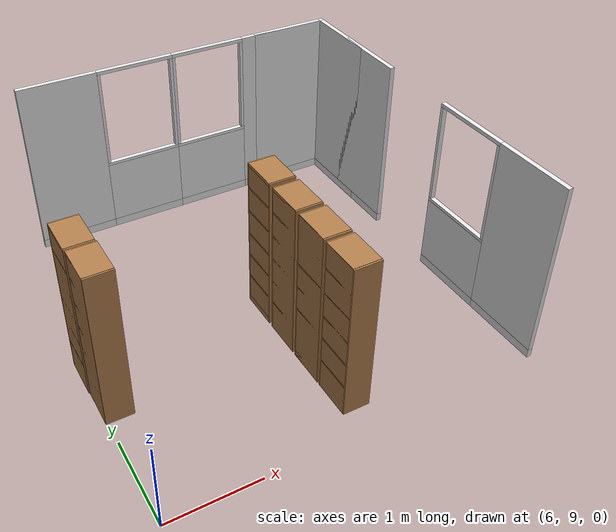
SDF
<sdf version="1.6">
 <world name="robocup_apartment">
  <model name="wall_x13y11">
   <link name="link">
    <inertial>
     <mass>50</mass>
     <inertia><ixx>1</ixx><ixy>0</ixy><ixz>0</ixz><iyy>1</iyy><iyz>0</iyz><izz>1</izz></inertia>
    </inertial>
    <visual name="bottom_frame">
     <pose>0 0 0.05 0 -0 0</pose>
     <geometry><box><size>0.055 0.9 0.1</size></box></geometry>
     <material>
      <script><uri>model://base_materials/color/scripts</uri><name>hsr_color/white</name></script>
     </material>
    </visual>
    <visual name="wall">
     <pose>0 0 1.095 0 -0 0</pose>
     <geometry><box><size>0.055 0.9 1.99</size></box></geometry>
     <material>
      <script>
       <uri>model://base_materials/wall/scripts</uri>
       <uri>model://base_materials/wall/textures</uri>
       <name>wall/white_noise</name>
      </script>
     </material>
    </visual>
    <velocity_decay><linear>0</linear><angular>0</angular></velocity_decay>
   </link>
   <static>1</static>
   <pose>10.1025 9.45 0 0 -0 0</pose>
  </model>
  <model name="wall_x13y12">
   <link name="link">
    <inertial>
     <mass>50</mass>
     <inertia><ixx>1</ixx><ixy>0</ixy><ixz>0</ixz><iyy>1</iyy><iyz>0</iyz><izz>1</izz></inertia>
    </inertial>
    <visual name="bottom_frame">
     <pose>0 0 0.05 0 -0 0</pose>
     <geometry><box><size>0.055 0.9 0.1</size></box></geometry>
     <material>
      <script><uri>model://base_materials/color/scripts</uri><name>hsr_color/white</name></script>
     </material>
    </visual>
    <visual name="wall">
     <pose>0 0 0.4875 0 -0 0</pose>
     <geometry><box><size>0.055 0.9 0.775</size></box></geometry>
     <material>
      <script>
       <uri>model://base_materials/wall/scripts</uri>
       <uri>model://base_materials/wall/textures</uri>
       <name>wall/white_noise</name>
      </script>
     </material>
    </visual>
    <visual name="center_frame">
     <pose>0 0 0.8925 0 -0 0</pose>
     <geometry><box><size>0.055 0.9 0.035</size></box></geometry>
     <material>
      <script><uri>model://base_materials/color/scripts</uri><name>hsr_color/white</name></script>
     </material>
    </visual>
    <visual name="right_frame">
     <pose>0 0.4325 1.48 0 -0 0</pose>
     <geometry><box><size>0.055 0.035 1.14</size></box></geometry>
     <material>
      <script><uri>model://base_materials/color/scripts</uri><name>hsr_color/white</name></script>
     </material>
    </visual>
    <visual name="left_frame">
     <pose>0 -0.4325 1.48 0 -0 0</pose>
     <geometry><box><size>0.055 0.035 1.14</size></box></geometry>
     <material>
      <script><uri>model://base_materials/color/scripts</uri><name>hsr_color/white</name></script>
     </material>
    </visual>
    <visual name="top_frame">
     <pose>0 0 2.07 0 -0 0</pose>
     <geometry><box><size>0.055 0.9 0.04</size></box></geometry>
     <material>
      <script><uri>model://base_materials/color/scripts</uri><name>hsr_color/white</name></script>
     </material>
    </visual>
    <velocity_decay><linear>0</linear><angular>0</angular></velocity_decay>
   </link>
   <static>1</static>
   <pose>10.1025 10.35 0 0 -0 0</pose>
  </model>
  <model name="wall_x13y14">
   <link name="link">
    <inertial>
     <mass>50</mass>
     <inertia><ixx>1</ixx><ixy>0</ixy><ixz>0</ixz><iyy>1</iyy><iyz>0</iyz><izz>1</izz></inertia>
    </inertial>
    <visual name="bottom_frame">
     <pose>0 0 0.05 0 -0 0</pose>
     <geometry><box><size>0.055 0.9 0.1</size></box></geometry>
     <material>
      <script><uri>model://base_materials/color/scripts</uri><name>hsr_color/white</name></script>
     </material>
    </visual>
    <visual name="wall">
     <pose>0 0 1.095 0 -0 0</pose>
     <geometry><box><size>0.055 0.9 1.99</size></box></geometry>
     <material>
      <script>
       <uri>model://base_materials/wall/scripts</uri>
       <uri>model://base_materials/wall/textures</uri>
       <name>wall/white_noise</name>
      </script>
     </material>
    </visual>
    <velocity_decay><linear>0</linear><angular>0</angular></velocity_decay>
   </link>
   <static>1</static>
   <pose>10.1025 12.15 0 0 -0 0</pose>
  </model>
  <model name="wall_x13y15">
   <link name="link">
    <inertial>
     <mass>50</mass>
     <inertia><ixx>1</ixx><ixy>0</ixy><ixz>0</ixz><iyy>1</iyy><iyz>0</iyz><izz>1</izz></inertia>
    </inertial>
    <visual name="bottom_frame">
     <pose>0 0 0.05 0 -0 0</pose>
     <geometry><box><size>0.055 0.9 0.1</size></box></geometry>
     <material>
      <script><uri>model://base_materials/color/scripts</uri><name>hsr_color/white</name></script>
     </material>
    </visual>
    <visual name="wall">
     <pose>0 0 1.095 0 -0 0</pose>
     <geometry><box><size>0.055 0.9 1.99</size></box></geometry>
     <material>
      <script>
       <uri>model://base_materials/wall/scripts</uri>
       <uri>model://base_materials/wall/textures</uri>
       <name>wall/white_noise</name>
      </script>
     </material>
    </visual>
    <velocity_decay><linear>0</linear><angular>0</angular></velocity_decay>
   </link>
   <static>1</static>
   <pose>10.1025 12.73 0 0 -0 0</pose>
  </model>
  <model name="wall_x13y16">
   <link name="link">
    <inertial>
     <mass>50</mass>
     <inertia><ixx>1</ixx><ixy>0</ixy><ixz>0</ixz><iyy>1</iyy><iyz>0</iyz><izz>1</izz></inertia>
    </inertial>
    <visual name="_frame">
     <pose>0 0 1.045 0 -0 0</pose>
     <geometry><box><size>0.055 0.055 2.09</size></box></geometry>
     <material>
      <script><uri>model://base_materials/color/scripts</uri><name>hsr_color/white</name></script>
     </material>
    </visual>
    <velocity_decay><linear>0</linear><angular>0</angular></velocity_decay>
   </link>
   <static>1</static>
   <pose>10.1025 13.2075 0 0 -0 0</pose>
  </model>
  <model name="wall_x08y16">
   <link name="link">
    <inertial>
     <mass>50</mass>
     <inertia><ixx>1</ixx><ixy>0</ixy><ixz>0</ixz><iyy>1</iyy><iyz>0</iyz><izz>1</izz></inertia>
    </inertial>
    <visual name="bottom_frame">
     <pose>0 0 0.05 0 -0 0</pose>
     <geometry><box><size>0.055 0.9 0.1</size></box></geometry>
     <material>
      <script><uri>model://base_materials/color/scripts</uri><name>hsr_color/white</name></script>
     </material>
    </visual>
    <visual name="wall">
     <pose>0 0 1.095 0 -0 0</pose>
     <geometry><box><size>0.055 0.9 1.99</size></box></geometry>
     <material>
      <script>
       <uri>model://base_materials/wall/scripts</uri>
       <uri>model://base_materials/wall/textures</uri>
       <name>wall/white_noise</name>
      </script>
     </material>
    </visual>
    <velocity_decay><linear>0</linear><angular>0</angular></velocity_decay>
   </link>
   <static>1</static>
   <pose>6.75 13.2075 0 0 -0 1.5708</pose>
  </model>
  <model name="wall_x09y16">
   <link name="link">
    <inertial>
     <mass>50</mass>
     <inertia><ixx>1</ixx><ixy>0</ixy><ixz>0</ixz><iyy>1</iyy><iyz>0</iyz><izz>1</izz></inertia>
    </inertial>
    <visual name="bottom_frame">
     <pose>0 0 0.05 0 -0 0</pose>
     <geometry><box><size>0.055 0.9 0.1</size></box></geometry>
     <material>
      <script><uri>model://base_materials/color/scripts</uri><name>hsr_color/white</name></script>
     </material>
    </visual>
    <visual name="wall">
     <pose>0 0 0.4875 0 -0 0</pose>
     <geometry><box><size>0.055 0.9 0.775</size></box></geometry>
     <material>
      <script>
       <uri>model://base_materials/wall/scripts</uri>
       <uri>model://base_materials/wall/textures</uri>
       <name>wall/white_noise</name>
      </script>
     </material>
    </visual>
    <visual name="center_frame">
     <pose>0 0 0.8925 0 -0 0</pose>
     <geometry><box><size>0.055 0.9 0.035</size></box></geometry>
     <material>
      <script><uri>model://base_materials/color/scripts</uri><name>hsr_color/white</name></script>
     </material>
    </visual>
    <visual name="right_frame">
     <pose>0 0.4325 1.48 0 -0 0</pose>
     <geometry><box><size>0.055 0.035 1.14</size></box></geometry>
     <material>
      <script><uri>model://base_materials/color/scripts</uri><name>hsr_color/white</name></script>
     </material>
    </visual>
    <visual name="left_frame">
     <pose>0 -0.4325 1.48 0 -0 0</pose>
     <geometry><box><size>0.055 0.035 1.14</size></box></geometry>
     <material>
      <script><uri>model://base_materials/color/scripts</uri><name>hsr_color/white</name></script>
     </material>
    </visual>
    <visual name="top_frame">
     <pose>0 0 2.07 0 -0 0</pose>
     <geometry><box><size>0.055 0.9 0.04</size></box></geometry>
     <material>
      <script><uri>model://base_materials/color/scripts</uri><name>hsr_color/white</name></script>
     </material>
    </visual>
    <velocity_decay><linear>0</linear><angular>0</angular></velocity_decay>
   </link>
   <static>1</static>
   <pose>7.65 13.2075 0 0 -0 1.5708</pose>
  </model>
  <model name="wall_x10y16">
   <link name="link">
    <inertial>
     <mass>50</mass>
     <inertia><ixx>1</ixx><ixy>0</ixy><ixz>0</ixz><iyy>1</iyy><iyz>0</iyz><izz>1</izz></inertia>
    </inertial>
    <visual name="bottom_frame">
     <pose>0 0 0.05 0 -0 0</pose>
     <geometry><box><size>0.055 0.9 0.1</size></box></geometry>
     <material>
      <script><uri>model://base_materials/color/scripts</uri><name>hsr_color/white</name></script>
     </material>
    </visual>
    <visual name="wall">
     <pose>0 0 0.4875 0 -0 0</pose>
     <geometry><box><size>0.055 0.9 0.775</size></box></geometry>
     <material>
      <script>
       <uri>model://base_materials/wall/scripts</uri>
       <uri>model://base_materials/wall/textures</uri>
       <name>wall/white_noise</name>
      </script>
     </material>
    </visual>
    <visual name="center_frame">
     <pose>0 0 0.8925 0 -0 0</pose>
     <geometry><box><size>0.055 0.9 0.035</size></box></geometry>
     <material>
      <script><uri>model://base_materials/color/scripts</uri><name>hsr_color/white</name></script>
     </material>
    </visual>
    <visual name="right_frame">
     <pose>0 0.4325 1.48 0 -0 0</pose>
     <geometry><box><size>0.055 0.035 1.14</size></box></geometry>
     <material>
      <script><uri>model://base_materials/color/scripts</uri><name>hsr_color/white</name></script>
     </material>
    </visual>
    <visual name="left_frame">
     <pose>0 -0.4325 1.48 0 -0 0</pose>
     <geometry><box><size>0.055 0.035 1.14</size></box></geometry>
     <material>
      <script><uri>model://base_materials/color/scripts</uri><name>hsr_color/white</name></script>
     </material>
    </visual>
    <visual name="top_frame">
     <pose>0 0 2.07 0 -0 0</pose>
     <geometry><box><size>0.055 0.9 0.04</size></box></geometry>
     <material>
      <script><uri>model://base_materials/color/scripts</uri><name>hsr_color/white</name></script>
     </material>
    </visual>
    <velocity_decay><linear>0</linear><angular>0</angular></velocity_decay>
   </link>
   <static>1</static>
   <pose>8.55 13.2075 0 0 -0 1.5708</pose>
  </model>
  <model name="wall_x11y16">
   <link name="link">
    <inertial>
     <mass>50</mass>
     <inertia><ixx>1</ixx><ixy>0</ixy><ixz>0</ixz><iyy>1</iyy><iyz>0</iyz><izz>1</izz></inertia>
    </inertial>
    <visual name="bottom_frame">
     <pose>0 0 0.05 0 -0 0</pose>
     <geometry><box><size>0.055 0.9 0.1</size></box></geometry>
     <material>
      <script><uri>model://base_materials/color/scripts</uri><name>hsr_color/white</name></script>
     </material>
    </visual>
    <visual name="wall">
     <pose>0 0 1.095 0 -0 0</pose>
     <geometry><box><size>0.055 0.9 1.99</size></box></geometry>
     <material>
      <script>
       <uri>model://base_materials/wall/scripts</uri>
       <uri>model://base_materials/wall/textures</uri>
       <name>wall/white_noise</name>
      </script>
     </material>
    </visual>
    <velocity_decay><linear>0</linear><angular>0</angular></velocity_decay>
   </link>
   <static>1</static>
   <pose>9.45 13.2075 0 0 -0 1.5708</pose>
  </model>
  <model name="wall_x12y16">
   <link name="link">
    <inertial>
     <mass>50</mass>
     <inertia><ixx>1</ixx><ixy>0</ixy><ixz>0</ixz><iyy>1</iyy><iyz>0</iyz><izz>1</izz></inertia>
    </inertial>
    <visual name="bottom_frame">
     <pose>0 0 0.05 0 -0 0</pose>
     <geometry><box><size>0.055 0.9 0.1</size></box></geometry>
     <material>
      <script><uri>model://base_materials/color/scripts</uri><name>hsr_color/white</name></script>
     </material>
    </visual>
    <visual name="wall">
     <pose>0 0 1.095 0 -0 0</pose>
     <geometry><box><size>0.055 0.9 1.99</size></box></geometry>
     <material>
      <script>
       <uri>model://base_materials/wall/scripts</uri>
       <uri>model://base_materials/wall/textures</uri>
       <name>wall/white_noise</name>
      </script>
     </material>
    </visual>
    <velocity_decay><linear>0</linear><angular>0</angular></velocity_decay>
   </link>
   <static>1</static>
   <pose>9.625 13.2075 0 0 -0 1.5708</pose>
  </model>
  <model name="wall_x13y16">
   <link name="link">
    <inertial>
     <mass>50</mass>
     <inertia><ixx>1</ixx><ixy>0</ixy><ixz>0</ixz><iyy>1</iyy><iyz>0</iyz><izz>1</izz></inertia>
    </inertial>
    <visual name="_frame">
     <pose>0 0 1.045 0 -0 0</pose>
     <geometry><box><size>0.055 0.055 2.09</size></box></geometry>
     <material>
      <script><uri>model://base_materials/color/scripts</uri><name>hsr_color/white</name></script>
     </material>
    </visual>
    <velocity_decay><linear>0</linear><angular>0</angular></velocity_decay>
   </link>
   <static>1</static>
   <pose>10.1025 13.2075 0 0 -0 0</pose>
  </model>
  <model name="wall_x08y16">
   <link name="link">
    <inertial>
     <mass>50</mass>
     <inertia><ixx>1</ixx><ixy>0</ixy><ixz>0</ixz><iyy>1</iyy><iyz>0</iyz><izz>1</izz></inertia>
    </inertial>
    <visual name="bottom_frame">
     <pose>0 0 0.05 0 -0 0</pose>
     <geometry><box><size>0.055 0.9 0.1</size></box></geometry>
     <material>
      <script><uri>model://base_materials/color/scripts</uri><name>hsr_color/white</name></script>
     </material>
    </visual>
    <visual name="wall">
     <pose>0 0 1.095 0 -0 0</pose>
     <geometry><box><size>0.055 0.9 1.99</size></box></geometry>
     <material>
      <script>
       <uri>model://base_materials/wall/scripts</uri>
       <uri>model://base_materials/wall/textures</uri>
       <name>wall/white_noise</name>
      </script>
     </material>
    </visual>
    <velocity_decay><linear>0</linear><angular>0</angular></velocity_decay>
   </link>
   <static>1</static>
   <pose>6.75 13.2075 0 0 -0 1.5708</pose>
  </model>
  <model name="wall_x13y11">
   <link name="link">
    <inertial>
     <mass>50</mass>
     <inertia><ixx>1</ixx><ixy>0</ixy><ixz>0</ixz><iyy>1</iyy><iyz>0</iyz><izz>1</izz></inertia>
    </inertial>
    <visual name="bottom_frame">
     <pose>0 0 0.05 0 -0 0</pose>
     <geometry><box><size>0.055 0.9 0.1</size></box></geometry>
     <material>
      <script><uri>model://base_materials/color/scripts</uri><name>hsr_color/white</name></script>
     </material>
    </visual>
    <visual name="wall">
     <pose>0 0 1.095 0 -0 0</pose>
     <geometry><box><size>0.055 0.9 1.99</size></box></geometry>
     <material>
      <script>
       <uri>model://base_materials/wall/scripts</uri>
       <uri>model://base_materials/wall/textures</uri>
       <name>wall/white_noise</name>
      </script>
     </material>
    </visual>
    <velocity_decay><linear>0</linear><angular>0</angular></velocity_decay>
   </link>
   <static>1</static>
   <pose>10.1025 9.45 0 0 -0 0</pose>
  </model>
  <model name="high_shelf05_clone_13">
   <link name="link">
    <inertial>
     <mass>5</mass>
     <inertia><ixx>1</ixx><ixy>0</ixy><ixz>0</ixz><iyy>1</iyy><iyz>0</iyz><izz>1</izz></inertia>
    </inertial>
    <visual name="left_board">
     <pose>-0.1475 0.009 0.898 0 -0 0</pose>
     <geometry><box><size>0.295 0.018 1.796</size></box></geometry>
     <material>
      <script>
       <uri>model://base_materials/wood/scripts</uri>
       <uri>model://base_materials/wood/textures</uri>
       <name>base_materials/light_wood</name>
      </script>
     </material>
    </visual>
    <collision name="collision_left_board">
     <pose>-0.1475 0.009 0.898 0 -0 0</pose>
     <geometry><box><size>0.295 0.018 1.796</size></box></geometry>
    </collision>
    <visual name="right_board">
     <pose>-0.1475 0.441 0.898 0 -0 0</pose>
     <geometry><box><size>0.295 0.018 1.796</size></box></geometry>
     <material>
      <script>
       <uri>model://base_materials/wood/scripts</uri>
       <uri>model://base_materials/wood/textures</uri>
       <name>base_materials/light_wood</name>
      </script>
     </material>
    </visual>
    <collision name="collision_right_board">
     <pose>-0.1475 0.441 0.898 0 -0 0</pose>
     <geometry><box><size>0.295 0.018 1.796</size></box></geometry>
    </collision>
    <visual name="top_board">
     <pose>-0.1475 0.225 1.7825 0 -0 0</pose>
     <geometry><box><size>0.295 0.414 0.035</size></box></geometry>
     <material>
      <script>
       <uri>model://base_materials/wood/scripts</uri>
       <uri>model://base_materials/wood/textures</uri>
       <name>base_materials/light_wood</name>
      </script>
     </material>
    </visual>
    <collision name="collision_top_board">
     <pose>-0.1475 0.225 1.7825 0 -0 0</pose>
     <geometry><box><size>0.295 0.414 0.035</size></box></geometry>
    </collision>
    <visual name="1st_shelf">
     <pose>-0.162 0.225 1.51 0 -0 0</pose>
     <geometry><box><size>0.266 0.414 0.018</size></box></geometry>
     <material>
      <script>
       <uri>model://base_materials/wood/scripts</uri>
       <uri>model://base_materials/wood/textures</uri>
       <name>base_materials/light_wood</name>
      </script>
     </material>
    </visual>
    <collision name="collision_1st_shelf">
     <pose>-0.162 0.225 1.51 0 -0 0</pose>
     <geometry><box><size>0.266 0.414 0.018</size></box></geometry>
    </collision>
    <visual name="2nd_shelf">
     <pose>-0.162 0.225 1.22 0 -0 0</pose>
     <geometry><box><size>0.266 0.414 0.018</size></box></geometry>
     <material>
      <script>
       <uri>model://base_materials/wood/scripts</uri>
       <uri>model://base_materials/wood/textures</uri>
       <name>base_materials/light_wood</name>
      </script>
     </material>
    </visual>
    <collision name="collision_2nd_shelf">
     <pose>-0.162 0.225 1.22 0 -0 0</pose>
     <geometry><box><size>0.266 0.414 0.018</size></box></geometry>
    </collision>
    <visual name="3rd_shelf">
     <pose>-0.162 0.225 0.93 0 -0 0</pose>
     <geometry><box><size>0.266 0.414 0.018</size></box></geometry>
     <material>
      <script>
       <uri>model://base_materials/wood/scripts</uri>
       <uri>model://base_materials/wood/textures</uri>
       <name>base_materials/light_wood</name>
      </script>
     </material>
    </visual>
    <collision name="collision_3rd_shelf">
     <pose>-0.162 0.225 0.93 0 -0 0</pose>
     <geometry><box><size>0.266 0.414 0.018</size></box></geometry>
    </collision>
    <visual name="4th_shelf">
     <pose>-0.162 0.225 0.65 0 -0 0</pose>
     <geometry><box><size>0.266 0.414 0.018</size></box></geometry>
     <material>
      <script>
       <uri>model://base_materials/wood/scripts</uri>
       <uri>model://base_materials/wood/textures</uri>
       <name>base_materials/light_wood</name>
      </script>
     </material>
    </visual>
    <collision name="collision_4th_shelf">
     <pose>-0.162 0.225 0.65 0 -0 0</pose>
     <geometry><box><size>0.266 0.414 0.018</size></box></geometry>
    </collision>
    <visual name="5th_shelf">
     <pose>-0.162 0.225 0.36 0 -0 0</pose>
     <geometry><box><size>0.266 0.414 0.018</size></box></geometry>
     <material>
      <script>
       <uri>model://base_materials/wood/scripts</uri>
       <uri>model://base_materials/wood/textures</uri>
       <name>base_materials/light_wood</name>
      </script>
     </material>
    </visual>
    <collision name="collision_5th_shelf">
     <pose>-0.162 0.225 0.36 0 -0 0</pose>
     <geometry><box><size>0.266 0.414 0.018</size></box></geometry>
    </collision>
    <visual name="bottom_board">
     <pose>-0.1475 0.225 0.035 0 -0 0</pose>
     <geometry><box><size>0.295 0.414 0.07</size></box></geometry>
     <material>
      <script>
       <uri>model://base_materials/wood/scripts</uri>
       <uri>model://base_materials/wood/textures</uri>
       <name>base_materials/light_wood</name>
      </script>
     </material>
    </visual>
    <collision name="collision_bottom_board">
     <pose>-0.1475 0.225 0.035 0 -0 0</pose>
     <geometry><box><size>0.295 0.414 0.07</size></box></geometry>
    </collision>
    <visual name="back_board">
     <pose>-0.286 0.225 0.898 0 -0 0</pose>
     <geometry><box><size>0.018 0.414 1.796</size></box></geometry>
     <material>
      <script>
       <uri>model://base_materials/wood/scripts</uri>
       <uri>model://base_materials/wood/textures</uri>
       <name>base_materials/light_wood</name>
      </script>
     </material>
    </visual>
    <collision name="collision_back_board">
     <pose>-0.286 0.225 0.898 0 -0 0</pose>
     <geometry><box><size>0.018 0.414 1.796</size></box></geometry>
    </collision>
    <velocity_decay><linear>0</linear><angular>0</angular></velocity_decay>
   </link>
   <static>1</static>
   <pose>6.26284 10.7103 0 0 -0 0</pose>
  </model>
  <model name="high_shelf05_clone_14">
   <link name="link">
    <inertial>
     <mass>5</mass>
     <inertia><ixx>1</ixx><ixy>0</ixy><ixz>0</ixz><iyy>1</iyy><iyz>0</iyz><izz>1</izz></inertia>
    </inertial>
    <visual name="left_board">
     <pose>-0.1475 0.009 0.898 0 -0 0</pose>
     <geometry><box><size>0.295 0.018 1.796</size></box></geometry>
     <material>
      <script>
       <uri>model://base_materials/wood/scripts</uri>
       <uri>model://base_materials/wood/textures</uri>
       <name>base_materials/light_wood</name>
      </script>
     </material>
    </visual>
    <collision name="collision_left_board">
     <pose>-0.1475 0.009 0.898 0 -0 0</pose>
     <geometry><box><size>0.295 0.018 1.796</size></box></geometry>
    </collision>
    <visual name="right_board">
     <pose>-0.1475 0.441 0.898 0 -0 0</pose>
     <geometry><box><size>0.295 0.018 1.796</size></box></geometry>
     <material>
      <script>
       <uri>model://base_materials/wood/scripts</uri>
       <uri>model://base_materials/wood/textures</uri>
       <name>base_materials/light_wood</name>
      </script>
     </material>
    </visual>
    <collision name="collision_right_board">
     <pose>-0.1475 0.441 0.898 0 -0 0</pose>
     <geometry><box><size>0.295 0.018 1.796</size></box></geometry>
    </collision>
    <visual name="top_board">
     <pose>-0.1475 0.225 1.7825 0 -0 0</pose>
     <geometry><box><size>0.295 0.414 0.035</size></box></geometry>
     <material>
      <script>
       <uri>model://base_materials/wood/scripts</uri>
       <uri>model://base_materials/wood/textures</uri>
       <name>base_materials/light_wood</name>
      </script>
     </material>
    </visual>
    <collision name="collision_top_board">
     <pose>-0.1475 0.225 1.7825 0 -0 0</pose>
     <geometry><box><size>0.295 0.414 0.035</size></box></geometry>
    </collision>
    <visual name="1st_shelf">
     <pose>-0.162 0.225 1.51 0 -0 0</pose>
     <geometry><box><size>0.266 0.414 0.018</size></box></geometry>
     <material>
      <script>
       <uri>model://base_materials/wood/scripts</uri>
       <uri>model://base_materials/wood/textures</uri>
       <name>base_materials/light_wood</name>
      </script>
     </material>
    </visual>
    <collision name="collision_1st_shelf">
     <pose>-0.162 0.225 1.51 0 -0 0</pose>
     <geometry><box><size>0.266 0.414 0.018</size></box></geometry>
    </collision>
    <visual name="2nd_shelf">
     <pose>-0.162 0.225 1.22 0 -0 0</pose>
     <geometry><box><size>0.266 0.414 0.018</size></box></geometry>
     <material>
      <script>
       <uri>model://base_materials/wood/scripts</uri>
       <uri>model://base_materials/wood/textures</uri>
       <name>base_materials/light_wood</name>
      </script>
     </material>
    </visual>
    <collision name="collision_2nd_shelf">
     <pose>-0.162 0.225 1.22 0 -0 0</pose>
     <geometry><box><size>0.266 0.414 0.018</size></box></geometry>
    </collision>
    <visual name="3rd_shelf">
     <pose>-0.162 0.225 0.93 0 -0 0</pose>
     <geometry><box><size>0.266 0.414 0.018</size></box></geometry>
     <material>
      <script>
       <uri>model://base_materials/wood/scripts</uri>
       <uri>model://base_materials/wood/textures</uri>
       <name>base_materials/light_wood</name>
      </script>
     </material>
    </visual>
    <collision name="collision_3rd_shelf">
     <pose>-0.162 0.225 0.93 0 -0 0</pose>
     <geometry><box><size>0.266 0.414 0.018</size></box></geometry>
    </collision>
    <visual name="4th_shelf">
     <pose>-0.162 0.225 0.65 0 -0 0</pose>
     <geometry><box><size>0.266 0.414 0.018</size></box></geometry>
     <material>
      <script>
       <uri>model://base_materials/wood/scripts</uri>
       <uri>model://base_materials/wood/textures</uri>
       <name>base_materials/light_wood</name>
      </script>
     </material>
    </visual>
    <collision name="collision_4th_shelf">
     <pose>-0.162 0.225 0.65 0 -0 0</pose>
     <geometry><box><size>0.266 0.414 0.018</size></box></geometry>
    </collision>
    <visual name="5th_shelf">
     <pose>-0.162 0.225 0.36 0 -0 0</pose>
     <geometry><box><size>0.266 0.414 0.018</size></box></geometry>
     <material>
      <script>
       <uri>model://base_materials/wood/scripts</uri>
       <uri>model://base_materials/wood/textures</uri>
       <name>base_materials/light_wood</name>
      </script>
     </material>
    </visual>
    <collision name="collision_5th_shelf">
     <pose>-0.162 0.225 0.36 0 -0 0</pose>
     <geometry><box><size>0.266 0.414 0.018</size></box></geometry>
    </collision>
    <visual name="bottom_board">
     <pose>-0.1475 0.225 0.035 0 -0 0</pose>
     <geometry><box><size>0.295 0.414 0.07</size></box></geometry>
     <material>
      <script>
       <uri>model://base_materials/wood/scripts</uri>
       <uri>model://base_materials/wood/textures</uri>
       <name>base_materials/light_wood</name>
      </script>
     </material>
    </visual>
    <collision name="collision_bottom_board">
     <pose>-0.1475 0.225 0.035 0 -0 0</pose>
     <geometry><box><size>0.295 0.414 0.07</size></box></geometry>
    </collision>
    <visual name="back_board">
     <pose>-0.286 0.225 0.898 0 -0 0</pose>
     <geometry><box><size>0.018 0.414 1.796</size></box></geometry>
     <material>
      <script>
       <uri>model://base_materials/wood/scripts</uri>
       <uri>model://base_materials/wood/textures</uri>
       <name>base_materials/light_wood</name>
      </script>
     </material>
    </visual>
    <collision name="collision_back_board">
     <pose>-0.286 0.225 0.898 0 -0 0</pose>
     <geometry><box><size>0.018 0.414 1.796</size></box></geometry>
    </collision>
    <velocity_decay><linear>0</linear><angular>0</angular></velocity_decay>
   </link>
   <static>1</static>
   <pose>6.27223 10.2565 0 0 -0 0</pose>
  </model>
  <model name="high_shelf05_clone_19">
   <link name="link">
    <inertial>
     <mass>5</mass>
     <inertia><ixx>1</ixx><ixy>0</ixy><ixz>0</ixz><iyy>1</iyy><iyz>0</iyz><izz>1</izz></inertia>
    </inertial>
    <visual name="left_board">
     <pose>-0.1475 0.009 0.898 0 -0 0</pose>
     <geometry><box><size>0.295 0.018 1.796</size></box></geometry>
     <material>
      <script>
       <uri>model://base_materials/wood/scripts</uri>
       <uri>model://base_materials/wood/textures</uri>
       <name>base_materials/light_wood</name>
      </script>
     </material>
    </visual>
    <collision name="collision_left_board">
     <pose>-0.1475 0.009 0.898 0 -0 0</pose>
     <geometry><box><size>0.295 0.018 1.796</size></box></geometry>
    </collision>
    <visual name="right_board">
     <pose>-0.1475 0.441 0.898 0 -0 0</pose>
     <geometry><box><size>0.295 0.018 1.796</size></box></geometry>
     <material>
      <script>
       <uri>model://base_materials/wood/scripts</uri>
       <uri>model://base_materials/wood/textures</uri>
       <name>base_materials/light_wood</name>
      </script>
     </material>
    </visual>
    <collision name="collision_right_board">
     <pose>-0.1475 0.441 0.898 0 -0 0</pose>
     <geometry><box><size>0.295 0.018 1.796</size></box></geometry>
    </collision>
    <visual name="top_board">
     <pose>-0.1475 0.225 1.7825 0 -0 0</pose>
     <geometry><box><size>0.295 0.414 0.035</size></box></geometry>
     <material>
      <script>
       <uri>model://base_materials/wood/scripts</uri>
       <uri>model://base_materials/wood/textures</uri>
       <name>base_materials/light_wood</name>
      </script>
     </material>
    </visual>
    <collision name="collision_top_board">
     <pose>-0.1475 0.225 1.7825 0 -0 0</pose>
     <geometry><box><size>0.295 0.414 0.035</size></box></geometry>
    </collision>
    <visual name="1st_shelf">
     <pose>-0.162 0.225 1.51 0 -0 0</pose>
     <geometry><box><size>0.266 0.414 0.018</size></box></geometry>
     <material>
      <script>
       <uri>model://base_materials/wood/scripts</uri>
       <uri>model://base_materials/wood/textures</uri>
       <name>base_materials/light_wood</name>
      </script>
     </material>
    </visual>
    <collision name="collision_1st_shelf">
     <pose>-0.162 0.225 1.51 0 -0 0</pose>
     <geometry><box><size>0.266 0.414 0.018</size></box></geometry>
    </collision>
    <visual name="2nd_shelf">
     <pose>-0.162 0.225 1.22 0 -0 0</pose>
     <geometry><box><size>0.266 0.414 0.018</size></box></geometry>
     <material>
      <script>
       <uri>model://base_materials/wood/scripts</uri>
       <uri>model://base_materials/wood/textures</uri>
       <name>base_materials/light_wood</name>
      </script>
     </material>
    </visual>
    <collision name="collision_2nd_shelf">
     <pose>-0.162 0.225 1.22 0 -0 0</pose>
     <geometry><box><size>0.266 0.414 0.018</size></box></geometry>
    </collision>
    <visual name="3rd_shelf">
     <pose>-0.162 0.225 0.93 0 -0 0</pose>
     <geometry><box><size>0.266 0.414 0.018</size></box></geometry>
     <material>
      <script>
       <uri>model://base_materials/wood/scripts</uri>
       <uri>model://base_materials/wood/textures</uri>
       <name>base_materials/light_wood</name>
      </script>
     </material>
    </visual>
    <collision name="collision_3rd_shelf">
     <pose>-0.162 0.225 0.93 0 -0 0</pose>
     <geometry><box><size>0.266 0.414 0.018</size></box></geometry>
    </collision>
    <visual name="4th_shelf">
     <pose>-0.162 0.225 0.65 0 -0 0</pose>
     <geometry><box><size>0.266 0.414 0.018</size></box></geometry>
     <material>
      <script>
       <uri>model://base_materials/wood/scripts</uri>
       <uri>model://base_materials/wood/textures</uri>
       <name>base_materials/light_wood</name>
      </script>
     </material>
    </visual>
    <collision name="collision_4th_shelf">
     <pose>-0.162 0.225 0.65 0 -0 0</pose>
     <geometry><box><size>0.266 0.414 0.018</size></box></geometry>
    </collision>
    <visual name="5th_shelf">
     <pose>-0.162 0.225 0.36 0 -0 0</pose>
     <geometry><box><size>0.266 0.414 0.018</size></box></geometry>
     <material>
      <script>
       <uri>model://base_materials/wood/scripts</uri>
       <uri>model://base_materials/wood/textures</uri>
       <name>base_materials/light_wood</name>
      </script>
     </material>
    </visual>
    <collision name="collision_5th_shelf">
     <pose>-0.162 0.225 0.36 0 -0 0</pose>
     <geometry><box><size>0.266 0.414 0.018</size></box></geometry>
    </collision>
    <visual name="bottom_board">
     <pose>-0.1475 0.225 0.035 0 -0 0</pose>
     <geometry><box><size>0.295 0.414 0.07</size></box></geometry>
     <material>
      <script>
       <uri>model://base_materials/wood/scripts</uri>
       <uri>model://base_materials/wood/textures</uri>
       <name>base_materials/light_wood</name>
      </script>
     </material>
    </visual>
    <collision name="collision_bottom_board">
     <pose>-0.1475 0.225 0.035 0 -0 0</pose>
     <geometry><box><size>0.295 0.414 0.07</size></box></geometry>
    </collision>
    <visual name="back_board">
     <pose>-0.286 0.225 0.898 0 -0 0</pose>
     <geometry><box><size>0.018 0.414 1.796</size></box></geometry>
     <material>
      <script>
       <uri>model://base_materials/wood/scripts</uri>
       <uri>model://base_materials/wood/textures</uri>
       <name>base_materials/light_wood</name>
      </script>
     </material>
    </visual>
    <collision name="collision_back_board">
     <pose>-0.286 0.225 0.898 0 -0 0</pose>
     <geometry><box><size>0.018 0.414 1.796</size></box></geometry>
    </collision>
    <velocity_decay><linear>0</linear><angular>0</angular></velocity_decay>
   </link>
   <static>1</static>
   <pose>8.30207 10.7261 0 0 -0 0</pose>
  </model>
  <model name="high_shelf05_clone_20">
   <link name="link">
    <inertial>
     <mass>5</mass>
     <inertia><ixx>1</ixx><ixy>0</ixy><ixz>0</ixz><iyy>1</iyy><iyz>0</iyz><izz>1</izz></inertia>
    </inertial>
    <visual name="left_board">
     <pose>-0.1475 0.009 0.898 0 -0 0</pose>
     <geometry><box><size>0.295 0.018 1.796</size></box></geometry>
     <material>
      <script>
       <uri>model://base_materials/wood/scripts</uri>
       <uri>model://base_materials/wood/textures</uri>
       <name>base_materials/light_wood</name>
      </script>
     </material>
    </visual>
    <collision name="collision_left_board">
     <pose>-0.1475 0.009 0.898 0 -0 0</pose>
     <geometry><box><size>0.295 0.018 1.796</size></box></geometry>
    </collision>
    <visual name="right_board">
     <pose>-0.1475 0.441 0.898 0 -0 0</pose>
     <geometry><box><size>0.295 0.018 1.796</size></box></geometry>
     <material>
      <script>
       <uri>model://base_materials/wood/scripts</uri>
       <uri>model://base_materials/wood/textures</uri>
       <name>base_materials/light_wood</name>
      </script>
     </material>
    </visual>
    <collision name="collision_right_board">
     <pose>-0.1475 0.441 0.898 0 -0 0</pose>
     <geometry><box><size>0.295 0.018 1.796</size></box></geometry>
    </collision>
    <visual name="top_board">
     <pose>-0.1475 0.225 1.7825 0 -0 0</pose>
     <geometry><box><size>0.295 0.414 0.035</size></box></geometry>
     <material>
      <script>
       <uri>model://base_materials/wood/scripts</uri>
       <uri>model://base_materials/wood/textures</uri>
       <name>base_materials/light_wood</name>
      </script>
     </material>
    </visual>
    <collision name="collision_top_board">
     <pose>-0.1475 0.225 1.7825 0 -0 0</pose>
     <geometry><box><size>0.295 0.414 0.035</size></box></geometry>
    </collision>
    <visual name="1st_shelf">
     <pose>-0.162 0.225 1.51 0 -0 0</pose>
     <geometry><box><size>0.266 0.414 0.018</size></box></geometry>
     <material>
      <script>
       <uri>model://base_materials/wood/scripts</uri>
       <uri>model://base_materials/wood/textures</uri>
       <name>base_materials/light_wood</name>
      </script>
     </material>
    </visual>
    <collision name="collision_1st_shelf">
     <pose>-0.162 0.225 1.51 0 -0 0</pose>
     <geometry><box><size>0.266 0.414 0.018</size></box></geometry>
    </collision>
    <visual name="2nd_shelf">
     <pose>-0.162 0.225 1.22 0 -0 0</pose>
     <geometry><box><size>0.266 0.414 0.018</size></box></geometry>
     <material>
      <script>
       <uri>model://base_materials/wood/scripts</uri>
       <uri>model://base_materials/wood/textures</uri>
       <name>base_materials/light_wood</name>
      </script>
     </material>
    </visual>
    <collision name="collision_2nd_shelf">
     <pose>-0.162 0.225 1.22 0 -0 0</pose>
     <geometry><box><size>0.266 0.414 0.018</size></box></geometry>
    </collision>
    <visual name="3rd_shelf">
     <pose>-0.162 0.225 0.93 0 -0 0</pose>
     <geometry><box><size>0.266 0.414 0.018</size></box></geometry>
     <material>
      <script>
       <uri>model://base_materials/wood/scripts</uri>
       <uri>model://base_materials/wood/textures</uri>
       <name>base_materials/light_wood</name>
      </script>
     </material>
    </visual>
    <collision name="collision_3rd_shelf">
     <pose>-0.162 0.225 0.93 0 -0 0</pose>
     <geometry><box><size>0.266 0.414 0.018</size></box></geometry>
    </collision>
    <visual name="4th_shelf">
     <pose>-0.162 0.225 0.65 0 -0 0</pose>
     <geometry><box><size>0.266 0.414 0.018</size></box></geometry>
     <material>
      <script>
       <uri>model://base_materials/wood/scripts</uri>
       <uri>model://base_materials/wood/textures</uri>
       <name>base_materials/light_wood</name>
      </script>
     </material>
    </visual>
    <collision name="collision_4th_shelf">
     <pose>-0.162 0.225 0.65 0 -0 0</pose>
     <geometry><box><size>0.266 0.414 0.018</size></box></geometry>
    </collision>
    <visual name="5th_shelf">
     <pose>-0.162 0.225 0.36 0 -0 0</pose>
     <geometry><box><size>0.266 0.414 0.018</size></box></geometry>
     <material>
      <script>
       <uri>model://base_materials/wood/scripts</uri>
       <uri>model://base_materials/wood/textures</uri>
       <name>base_materials/light_wood</name>
      </script>
     </material>
    </visual>
    <collision name="collision_5th_shelf">
     <pose>-0.162 0.225 0.36 0 -0 0</pose>
     <geometry><box><size>0.266 0.414 0.018</size></box></geometry>
    </collision>
    <visual name="bottom_board">
     <pose>-0.1475 0.225 0.035 0 -0 0</pose>
     <geometry><box><size>0.295 0.414 0.07</size></box></geometry>
     <material>
      <script>
       <uri>model://base_materials/wood/scripts</uri>
       <uri>model://base_materials/wood/textures</uri>
       <name>base_materials/light_wood</name>
      </script>
     </material>
    </visual>
    <collision name="collision_bottom_board">
     <pose>-0.1475 0.225 0.035 0 -0 0</pose>
     <geometry><box><size>0.295 0.414 0.07</size></box></geometry>
    </collision>
    <visual name="back_board">
     <pose>-0.286 0.225 0.898 0 -0 0</pose>
     <geometry><box><size>0.018 0.414 1.796</size></box></geometry>
     <material>
      <script>
       <uri>model://base_materials/wood/scripts</uri>
       <uri>model://base_materials/wood/textures</uri>
       <name>base_materials/light_wood</name>
      </script>
     </material>
    </visual>
    <collision name="collision_back_board">
     <pose>-0.286 0.225 0.898 0 -0 0</pose>
     <geometry><box><size>0.018 0.414 1.796</size></box></geometry>
    </collision>
    <velocity_decay><linear>0</linear><angular>0</angular></velocity_decay>
   </link>
   <static>1</static>
   <pose>8.30256 10.2303 0 0 -0 0</pose>
  </model>
  <model name="high_shelf05_clone_21">
   <link name="link">
    <inertial>
     <mass>5</mass>
     <inertia><ixx>1</ixx><ixy>0</ixy><ixz>0</ixz><iyy>1</iyy><iyz>0</iyz><izz>1</izz></inertia>
    </inertial>
    <visual name="left_board">
     <pose>-0.1475 0.009 0.898 0 -0 0</pose>
     <geometry><box><size>0.295 0.018 1.796</size></box></geometry>
     <material>
      <script>
       <uri>model://base_materials/wood/scripts</uri>
       <uri>model://base_materials/wood/textures</uri>
       <name>base_materials/light_wood</name>
      </script>
     </material>
    </visual>
    <collision name="collision_left_board">
     <pose>-0.1475 0.009 0.898 0 -0 0</pose>
     <geometry><box><size>0.295 0.018 1.796</size></box></geometry>
    </collision>
    <visual name="right_board">
     <pose>-0.1475 0.441 0.898 0 -0 0</pose>
     <geometry><box><size>0.295 0.018 1.796</size></box></geometry>
     <material>
      <script>
       <uri>model://base_materials/wood/scripts</uri>
       <uri>model://base_materials/wood/textures</uri>
       <name>base_materials/light_wood</name>
      </script>
     </material>
    </visual>
    <collision name="collision_right_board">
     <pose>-0.1475 0.441 0.898 0 -0 0</pose>
     <geometry><box><size>0.295 0.018 1.796</size></box></geometry>
    </collision>
    <visual name="top_board">
     <pose>-0.1475 0.225 1.7825 0 -0 0</pose>
     <geometry><box><size>0.295 0.414 0.035</size></box></geometry>
     <material>
      <script>
       <uri>model://base_materials/wood/scripts</uri>
       <uri>model://base_materials/wood/textures</uri>
       <name>base_materials/light_wood</name>
      </script>
     </material>
    </visual>
    <collision name="collision_top_board">
     <pose>-0.1475 0.225 1.7825 0 -0 0</pose>
     <geometry><box><size>0.295 0.414 0.035</size></box></geometry>
    </collision>
    <visual name="1st_shelf">
     <pose>-0.162 0.225 1.51 0 -0 0</pose>
     <geometry><box><size>0.266 0.414 0.018</size></box></geometry>
     <material>
      <script>
       <uri>model://base_materials/wood/scripts</uri>
       <uri>model://base_materials/wood/textures</uri>
       <name>base_materials/light_wood</name>
      </script>
     </material>
    </visual>
    <collision name="collision_1st_shelf">
     <pose>-0.162 0.225 1.51 0 -0 0</pose>
     <geometry><box><size>0.266 0.414 0.018</size></box></geometry>
    </collision>
    <visual name="2nd_shelf">
     <pose>-0.162 0.225 1.22 0 -0 0</pose>
     <geometry><box><size>0.266 0.414 0.018</size></box></geometry>
     <material>
      <script>
       <uri>model://base_materials/wood/scripts</uri>
       <uri>model://base_materials/wood/textures</uri>
       <name>base_materials/light_wood</name>
      </script>
     </material>
    </visual>
    <collision name="collision_2nd_shelf">
     <pose>-0.162 0.225 1.22 0 -0 0</pose>
     <geometry><box><size>0.266 0.414 0.018</size></box></geometry>
    </collision>
    <visual name="3rd_shelf">
     <pose>-0.162 0.225 0.93 0 -0 0</pose>
     <geometry><box><size>0.266 0.414 0.018</size></box></geometry>
     <material>
      <script>
       <uri>model://base_materials/wood/scripts</uri>
       <uri>model://base_materials/wood/textures</uri>
       <name>base_materials/light_wood</name>
      </script>
     </material>
    </visual>
    <collision name="collision_3rd_shelf">
     <pose>-0.162 0.225 0.93 0 -0 0</pose>
     <geometry><box><size>0.266 0.414 0.018</size></box></geometry>
    </collision>
    <visual name="4th_shelf">
     <pose>-0.162 0.225 0.65 0 -0 0</pose>
     <geometry><box><size>0.266 0.414 0.018</size></box></geometry>
     <material>
      <script>
       <uri>model://base_materials/wood/scripts</uri>
       <uri>model://base_materials/wood/textures</uri>
       <name>base_materials/light_wood</name>
      </script>
     </material>
    </visual>
    <collision name="collision_4th_shelf">
     <pose>-0.162 0.225 0.65 0 -0 0</pose>
     <geometry><box><size>0.266 0.414 0.018</size></box></geometry>
    </collision>
    <visual name="5th_shelf">
     <pose>-0.162 0.225 0.36 0 -0 0</pose>
     <geometry><box><size>0.266 0.414 0.018</size></box></geometry>
     <material>
      <script>
       <uri>model://base_materials/wood/scripts</uri>
       <uri>model://base_materials/wood/textures</uri>
       <name>base_materials/light_wood</name>
      </script>
     </material>
    </visual>
    <collision name="collision_5th_shelf">
     <pose>-0.162 0.225 0.36 0 -0 0</pose>
     <geometry><box><size>0.266 0.414 0.018</size></box></geometry>
    </collision>
    <visual name="bottom_board">
     <pose>-0.1475 0.225 0.035 0 -0 0</pose>
     <geometry><box><size>0.295 0.414 0.07</size></box></geometry>
     <material>
      <script>
       <uri>model://base_materials/wood/scripts</uri>
       <uri>model://base_materials/wood/textures</uri>
       <name>base_materials/light_wood</name>
      </script>
     </material>
    </visual>
    <collision name="collision_bottom_board">
     <pose>-0.1475 0.225 0.035 0 -0 0</pose>
     <geometry><box><size>0.295 0.414 0.07</size></box></geometry>
    </collision>
    <visual name="back_board">
     <pose>-0.286 0.225 0.898 0 -0 0</pose>
     <geometry><box><size>0.018 0.414 1.796</size></box></geometry>
     <material>
      <script>
       <uri>model://base_materials/wood/scripts</uri>
       <uri>model://base_materials/wood/textures</uri>
       <name>base_materials/light_wood</name>
      </script>
     </material>
    </visual>
    <collision name="collision_back_board">
     <pose>-0.286 0.225 0.898 0 -0 0</pose>
     <geometry><box><size>0.018 0.414 1.796</size></box></geometry>
    </collision>
    <velocity_decay><linear>0</linear><angular>0</angular></velocity_decay>
   </link>
   <static>1</static>
   <pose>8.30316 9.74548 0 0 -0 0</pose>
  </model>
  <model name="high_shelf05_clone_22">
   <link name="link">
    <inertial>
     <mass>5</mass>
     <inertia><ixx>1</ixx><ixy>0</ixy><ixz>0</ixz><iyy>1</iyy><iyz>0</iyz><izz>1</izz></inertia>
    </inertial>
    <visual name="left_board">
     <pose>-0.1475 0.009 0.898 0 -0 0</pose>
     <geometry><box><size>0.295 0.018 1.796</size></box></geometry>
     <material>
      <script>
       <uri>model://base_materials/wood/scripts</uri>
       <uri>model://base_materials/wood/textures</uri>
       <name>base_materials/light_wood</name>
      </script>
     </material>
    </visual>
    <collision name="collision_left_board">
     <pose>-0.1475 0.009 0.898 0 -0 0</pose>
     <geometry><box><size>0.295 0.018 1.796</size></box></geometry>
    </collision>
    <visual name="right_board">
     <pose>-0.1475 0.441 0.898 0 -0 0</pose>
     <geometry><box><size>0.295 0.018 1.796</size></box></geometry>
     <material>
      <script>
       <uri>model://base_materials/wood/scripts</uri>
       <uri>model://base_materials/wood/textures</uri>
       <name>base_materials/light_wood</name>
      </script>
     </material>
    </visual>
    <collision name="collision_right_board">
     <pose>-0.1475 0.441 0.898 0 -0 0</pose>
     <geometry><box><size>0.295 0.018 1.796</size></box></geometry>
    </collision>
    <visual name="top_board">
     <pose>-0.1475 0.225 1.7825 0 -0 0</pose>
     <geometry><box><size>0.295 0.414 0.035</size></box></geometry>
     <material>
      <script>
       <uri>model://base_materials/wood/scripts</uri>
       <uri>model://base_materials/wood/textures</uri>
       <name>base_materials/light_wood</name>
      </script>
     </material>
    </visual>
    <collision name="collision_top_board">
     <pose>-0.1475 0.225 1.7825 0 -0 0</pose>
     <geometry><box><size>0.295 0.414 0.035</size></box></geometry>
    </collision>
    <visual name="1st_shelf">
     <pose>-0.162 0.225 1.51 0 -0 0</pose>
     <geometry><box><size>0.266 0.414 0.018</size></box></geometry>
     <material>
      <script>
       <uri>model://base_materials/wood/scripts</uri>
       <uri>model://base_materials/wood/textures</uri>
       <name>base_materials/light_wood</name>
      </script>
     </material>
    </visual>
    <collision name="collision_1st_shelf">
     <pose>-0.162 0.225 1.51 0 -0 0</pose>
     <geometry><box><size>0.266 0.414 0.018</size></box></geometry>
    </collision>
    <visual name="2nd_shelf">
     <pose>-0.162 0.225 1.22 0 -0 0</pose>
     <geometry><box><size>0.266 0.414 0.018</size></box></geometry>
     <material>
      <script>
       <uri>model://base_materials/wood/scripts</uri>
       <uri>model://base_materials/wood/textures</uri>
       <name>base_materials/light_wood</name>
      </script>
     </material>
    </visual>
    <collision name="collision_2nd_shelf">
     <pose>-0.162 0.225 1.22 0 -0 0</pose>
     <geometry><box><size>0.266 0.414 0.018</size></box></geometry>
    </collision>
    <visual name="3rd_shelf">
     <pose>-0.162 0.225 0.93 0 -0 0</pose>
     <geometry><box><size>0.266 0.414 0.018</size></box></geometry>
     <material>
      <script>
       <uri>model://base_materials/wood/scripts</uri>
       <uri>model://base_materials/wood/textures</uri>
       <name>base_materials/light_wood</name>
      </script>
     </material>
    </visual>
    <collision name="collision_3rd_shelf">
     <pose>-0.162 0.225 0.93 0 -0 0</pose>
     <geometry><box><size>0.266 0.414 0.018</size></box></geometry>
    </collision>
    <visual name="4th_shelf">
     <pose>-0.162 0.225 0.65 0 -0 0</pose>
     <geometry><box><size>0.266 0.414 0.018</size></box></geometry>
     <material>
      <script>
       <uri>model://base_materials/wood/scripts</uri>
       <uri>model://base_materials/wood/textures</uri>
       <name>base_materials/light_wood</name>
      </script>
     </material>
    </visual>
    <collision name="collision_4th_shelf">
     <pose>-0.162 0.225 0.65 0 -0 0</pose>
     <geometry><box><size>0.266 0.414 0.018</size></box></geometry>
    </collision>
    <visual name="5th_shelf">
     <pose>-0.162 0.225 0.36 0 -0 0</pose>
     <geometry><box><size>0.266 0.414 0.018</size></box></geometry>
     <material>
      <script>
       <uri>model://base_materials/wood/scripts</uri>
       <uri>model://base_materials/wood/textures</uri>
       <name>base_materials/light_wood</name>
      </script>
     </material>
    </visual>
    <collision name="collision_5th_shelf">
     <pose>-0.162 0.225 0.36 0 -0 0</pose>
     <geometry><box><size>0.266 0.414 0.018</size></box></geometry>
    </collision>
    <visual name="bottom_board">
     <pose>-0.1475 0.225 0.035 0 -0 0</pose>
     <geometry><box><size>0.295 0.414 0.07</size></box></geometry>
     <material>
      <script>
       <uri>model://base_materials/wood/scripts</uri>
       <uri>model://base_materials/wood/textures</uri>
       <name>base_materials/light_wood</name>
      </script>
     </material>
    </visual>
    <collision name="collision_bottom_board">
     <pose>-0.1475 0.225 0.035 0 -0 0</pose>
     <geometry><box><size>0.295 0.414 0.07</size></box></geometry>
    </collision>
    <visual name="back_board">
     <pose>-0.286 0.225 0.898 0 -0 0</pose>
     <geometry><box><size>0.018 0.414 1.796</size></box></geometry>
     <material>
      <script>
       <uri>model://base_materials/wood/scripts</uri>
       <uri>model://base_materials/wood/textures</uri>
       <name>base_materials/light_wood</name>
      </script>
     </material>
    </visual>
    <collision name="collision_back_board">
     <pose>-0.286 0.225 0.898 0 -0 0</pose>
     <geometry><box><size>0.018 0.414 1.796</size></box></geometry>
    </collision>
    <velocity_decay><linear>0</linear><angular>0</angular></velocity_decay>
   </link>
   <static>1</static>
   <pose>8.30378 9.27105 0 0 -0 0</pose>
  </model>
 </world>
</sdf>
